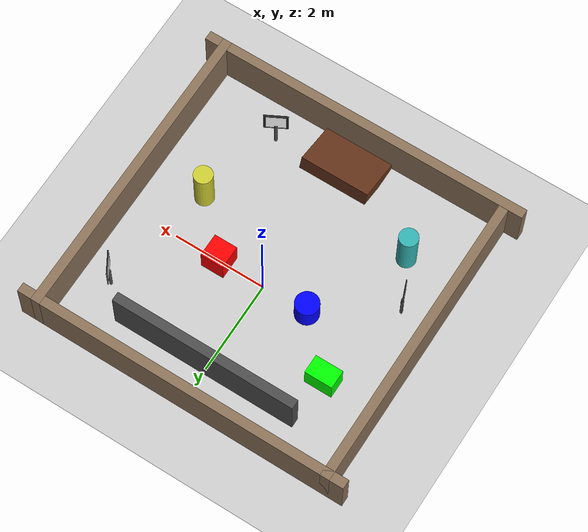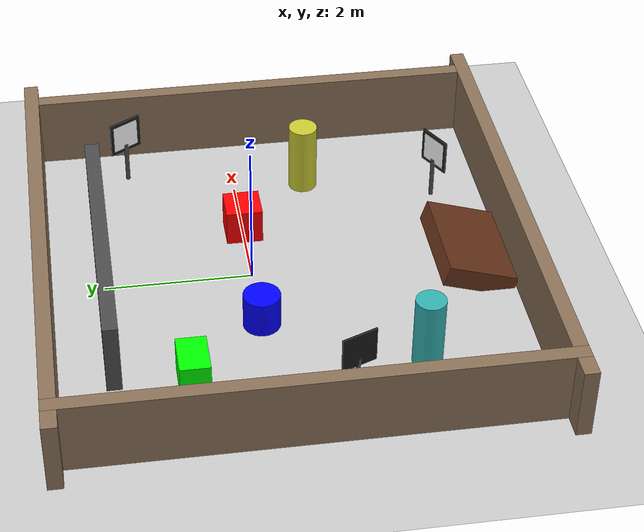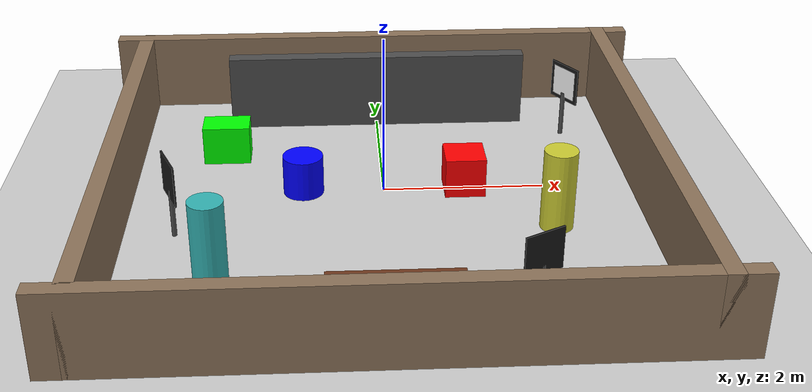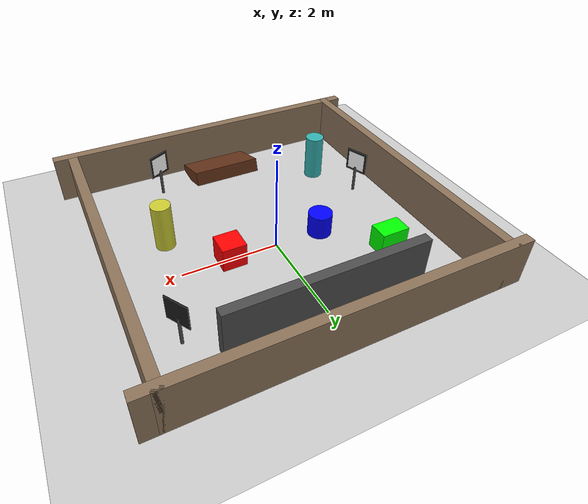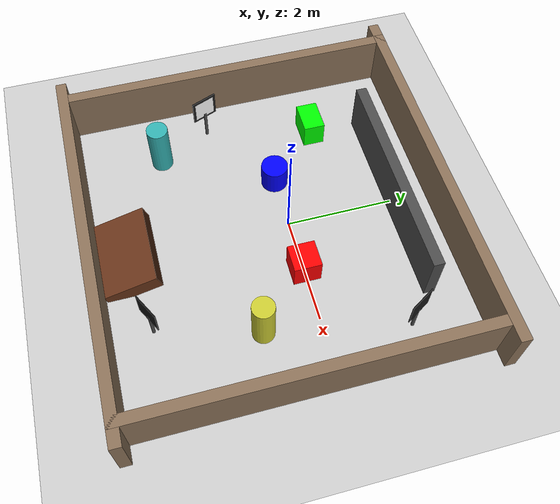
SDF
<?xml version="1.0" ?>
<sdf version="1.6">
  <world name="simple_obstacles_world">

    <!-- ================= LIGHT & GROUND ================= -->
    <plugin
      filename="gz-sim-physics-system"
      name="gz::sim::systems::Physics">
    </plugin>
    <plugin
      filename="gz-sim-sensors-system"
      name="gz::sim::systems::Sensors">
      <render_engine>ogre</render_engine>
    </plugin>
    <plugin
      filename="gz-sim-user-commands-system"
      name="gz::sim::systems::UserCommands">
    </plugin>
    <plugin
      filename="gz-sim-scene-broadcaster-system"
      name="gz::sim::systems::SceneBroadcaster">
    </plugin>
    <plugin
      filename="gz-sim-imu-system"
      name="gz::sim::systems::Imu">
    </plugin>

    <spherical_coordinates>
      <surface_model>EARTH_WGS84</surface_model>
      <latitude_deg>0.0</latitude_deg>
      <longitude_deg>0.0</longitude_deg>
      <elevation>0.0</elevation>
    </spherical_coordinates>

    <light type="directional" name="sun">
      <cast_shadows>true</cast_shadows>
      <pose>0 0 10 0 0 0</pose>
      <diffuse>0.8 0.8 0.8 1</diffuse>
      <specular>0.2 0.2 0.2 1</specular>
      <attenuation>
        <range>1000</range>
        <constant>0.9</constant>
        <linear>0.01</linear>
        <quadratic>0.001</quadratic>
      </attenuation>
      <direction>-0.5 0.1 -0.9</direction>
    </light>

    <model name="ground_plane">
      <static>true</static>
      <link name="link">
        <collision name="collision">
          <geometry>
            <plane>
              <normal>0 0 1</normal>
            </plane>
          </geometry>
        </collision>
        <visual name="visual">
          <geometry>
            <plane>
              <normal>0 0 1</normal>
              <size>100 100</size>
            </plane>
          </geometry>
          <material>
            <ambient>0.8 0.8 0.8 1</ambient>
            <diffuse>0.8 0.8 0.8 1</diffuse>
            <specular>0.8 0.8 0.8 1</specular>
          </material>
        </visual>
      </link>
    </model>

    <!-- ================= BASIC OBSTACLES ================= -->

    <!-- BOX 1 -->
    <model name="box_obstacle_1">
      <static>true</static>
      <pose>1 0 0.25 0 0 0</pose>
      <link name="link">
        <collision name="collision">
          <geometry>
            <box><size>0.5 0.5 0.5</size></box>
          </geometry>
        </collision>
        <visual name="visual">
          <geometry>
            <box><size>0.5 0.5 0.5</size></box>
          </geometry>
          <material><ambient>1 0 0 1</ambient></material>
        </visual>
      </link>
    </model>

    <!-- CYLINDER -->
    <model name="cylinder_obstacle">
      <static>true</static>
      <pose>-1 0 0.25 0 0 0</pose>
      <link name="link">
        <collision name="collision">
          <geometry>
            <cylinder>
              <radius>0.25</radius>
              <length>0.5</length>
            </cylinder>
          </geometry>
        </collision>
        <visual name="visual">
          <geometry>
            <cylinder>
              <radius>0.25</radius>
              <length>0.5</length>
            </cylinder>
          </geometry>
          <material><ambient>0 0 1 1</ambient></material>
        </visual>
      </link>
    </model>

    <!-- WALL -->
    <model name="wall_main">
      <static>true</static>
      <pose>0 2 0.5 0 0 0</pose>
      <link name="link">
        <collision name="collision">
          <geometry>
            <box><size>4 0.2 1</size></box>
          </geometry>
        </collision>
        <visual name="visual">
          <geometry>
            <box><size>4 0.2 1</size></box>
          </geometry>
          <material><ambient>0.3 0.3 0.3 1</ambient></material>
        </visual>
      </link>
    </model>

    <model name="arena_wall_north">
      <static>true</static>
      <pose>0 2.8 0.5 0 0 0</pose>
      <link name="link">
        <collision name="collision">
          <geometry><box><size>7.2 0.2 1</size></box></geometry>
        </collision>
        <visual name="visual">
          <geometry><box><size>7.2 0.2 1</size></box></geometry>
          <material><ambient>0.55 0.45 0.35 1</ambient></material>
        </visual>
      </link>
    </model>

    <model name="arena_wall_south">
      <static>true</static>
      <pose>0 -3.6 0.5 0 0 0</pose>
      <link name="link">
        <collision name="collision">
          <geometry><box><size>7.2 0.2 1</size></box></geometry>
        </collision>
        <visual name="visual">
          <geometry><box><size>7.2 0.2 1</size></box></geometry>
          <material><ambient>0.55 0.45 0.35 1</ambient></material>
        </visual>
      </link>
    </model>

    <model name="arena_wall_east">
      <static>true</static>
      <pose>3.2 -0.4 0.5 0 0 1.5708</pose>
      <link name="link">
        <collision name="collision">
          <geometry><box><size>6.6 0.2 1</size></box></geometry>
        </collision>
        <visual name="visual">
          <geometry><box><size>6.6 0.2 1</size></box></geometry>
          <material><ambient>0.55 0.45 0.35 1</ambient></material>
        </visual>
      </link>
    </model>

    <model name="arena_wall_west">
      <static>true</static>
      <pose>-3.2 -0.4 0.5 0 0 1.5708</pose>
      <link name="link">
        <collision name="collision">
          <geometry><box><size>6.6 0.2 1</size></box></geometry>
        </collision>
        <visual name="visual">
          <geometry><box><size>6.6 0.2 1</size></box></geometry>
          <material><ambient>0.55 0.45 0.35 1</ambient></material>
        </visual>
      </link>
    </model>

    <!-- ================= EXTRA OBSTACLES ================= -->

    <!-- BOX 2 -->
    <model name="box_obstacle_2">
      <static>true</static>
      <pose>-2 1 0.25 0 0 0</pose>
      <link name="link">
        <collision name="collision">
          <geometry>
            <box><size>0.6 0.4 0.5</size></box>
          </geometry>
        </collision>
        <visual name="visual">
          <geometry>
            <box><size>0.6 0.4 0.5</size></box>
          </geometry>
          <material><ambient>0 1 0 1</ambient></material>
        </visual>
      </link>
    </model>

    <!-- PILLAR 1 -->
    <model name="pillar_1">
      <static>true</static>
      <pose>2 -1 0.5 0 0 0</pose>
      <link name="link">
        <collision name="collision">
          <geometry>
            <cylinder>
              <radius>0.2</radius>
              <length>1.0</length>
            </cylinder>
          </geometry>
        </collision>
        <visual name="visual">
          <geometry>
            <cylinder>
              <radius>0.2</radius>
              <length>1.0</length>
            </cylinder>
          </geometry>
          <material><ambient>0.8 0.8 0.2 1</ambient></material>
        </visual>
      </link>
    </model>

    <!-- PILLAR 2 -->
    <model name="pillar_2">
      <static>true</static>
      <pose>-2 -2 0.5 0 0 0</pose>
      <link name="link">
        <collision name="collision">
          <geometry>
            <cylinder>
              <radius>0.2</radius>
              <length>1.0</length>
            </cylinder>
          </geometry>
        </collision>
        <visual name="visual">
          <geometry>
            <cylinder>
              <radius>0.2</radius>
              <length>1.0</length>
            </cylinder>
          </geometry>
          <material><ambient>0.2 0.7 0.7 1</ambient></material>
        </visual>
      </link>
    </model>

    <!-- RAMP -->
    <model name="ramp">
      <static>true</static>
      <pose>0 -3 0.15 0.3 0 0</pose>
      <link name="link">
        <collision name="collision">
          <geometry>
            <box><size>1.5 1.0 0.3</size></box>
          </geometry>
        </collision>
        <visual name="visual">
          <geometry>
            <box><size>1.5 1.0 0.3</size></box>
          </geometry>
          <material><ambient>0.4 0.2 0.1 1</ambient></material>
        </visual>
      </link>
    </model>

    <!-- ================= ARUCO MARKERS ================= -->

    <!-- ArUco Marker 1 (id=1) at (2.5, 1.5), facing robot start (0,0) -->
    <include>
      <uri>model://aruco_marker_1</uri>
      <name>aruco_marker_1</name>
      <pose>2.5 1.5 0 0 0 -2.60</pose>
    </include>

    <!-- ArUco Marker 2 (id=2) at (-2.5, -1.0), facing robot start -->
    <include>
      <uri>model://aruco_marker_2</uri>
      <name>aruco_marker_2</name>
      <pose>-2.5 -1.0 0 0 0 0.38</pose>
    </include>

    <!-- ArUco Marker 3 (id=3) at (1.5, -2.8), facing robot start -->
    <include>
      <uri>model://aruco_marker_3</uri>
      <name>aruco_marker_3</name>
      <pose>1.5 -2.8 0 0 0 2.06</pose>
    </include>

  </world>
</sdf>

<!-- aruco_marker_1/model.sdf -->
<sdf version="1.11">
  <!-- ArUco marker board id=1: stand pole + textured board facing +X -->
  <model name="aruco_marker_1">
    <static>true</static>
    <link name="link">
      <!-- stand pole -->
      <collision name="pole_collision">
        <pose>0 0 0.3 0 0 0</pose>
        <geometry><cylinder><radius>0.03</radius><length>0.6</length></cylinder></geometry>
      </collision>
      <visual name="pole_visual">
        <pose>0 0 0.3 0 0 0</pose>
        <geometry><cylinder><radius>0.03</radius><length>0.6</length></cylinder></geometry>
        <material><diffuse>0.3 0.3 0.3 1</diffuse></material>
      </visual>
      <!-- board backing 0.5 x 0.05 x 0.5 at 0.75m -->
      <collision name="board_collision">
        <pose>0 0 0.75 0 0 0</pose>
        <geometry><box><size>0.05 0.5 0.5</size></box></geometry>
      </collision>
      <visual name="board_back">
        <pose>-0.014 0 0.75 0 0 0</pose>
        <geometry><box><size>0.02 0.5 0.5</size></box></geometry>
        <material><diffuse>0.1 0.1 0.1 1</diffuse></material>
      </visual>
      <!-- ArUco textured face (+X side). Thin plane so camera sees marker_1.png -->
      <visual name="marker_face">
        <pose>0.001 0 0.75 0 0 0</pose>
        <geometry><plane><normal>1 0 0</normal><size>0.4 0.4</size></plane></geometry>
        <material>
          <diffuse>1 1 1 1</diffuse>
          <specular>0 0 0 1</specular>
          <pbr>
            <metal>
              <albedo_map>model://aruco_marker_1/materials/textures/marker_1.png</albedo_map>
              <roughness>0.9</roughness>
              <metalness>0.0</metalness>
            </metal>
          </pbr>
          <script>
            <uri>model://aruco_marker_1/materials/scripts</uri>
            <uri>model://aruco_marker_1/materials/textures</uri>
            <name>ArucoMarker1</name>
          </script>
        </material>
      </visual>
    </link>
  </model>
</sdf>

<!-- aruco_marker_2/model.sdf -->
<sdf version="1.11">
  <model name="aruco_marker_2">
    <static>true</static>
    <link name="link">
      <collision name="pole_collision">
        <pose>0 0 0.3 0 0 0</pose>
        <geometry><cylinder><radius>0.03</radius><length>0.6</length></cylinder></geometry>
      </collision>
      <visual name="pole_visual">
        <pose>0 0 0.3 0 0 0</pose>
        <geometry><cylinder><radius>0.03</radius><length>0.6</length></cylinder></geometry>
        <material><diffuse>0.3 0.3 0.3 1</diffuse></material>
      </visual>
      <collision name="board_collision">
        <pose>0 0 0.75 0 0 0</pose>
        <geometry><box><size>0.05 0.5 0.5</size></box></geometry>
      </collision>
      <visual name="board_back">
        <pose>-0.014 0 0.75 0 0 0</pose>
        <geometry><box><size>0.02 0.5 0.5</size></box></geometry>
        <material><diffuse>0.1 0.1 0.1 1</diffuse></material>
      </visual>
      <visual name="marker_face">
        <pose>0.001 0 0.75 0 0 0</pose>
        <geometry><plane><normal>1 0 0</normal><size>0.4 0.4</size></plane></geometry>
        <material>
          <diffuse>1 1 1 1</diffuse>
          <specular>0 0 0 1</specular>
          <pbr>
            <metal>
              <albedo_map>model://aruco_marker_2/materials/textures/marker_2.png</albedo_map>
              <roughness>0.9</roughness>
              <metalness>0.0</metalness>
            </metal>
          </pbr>
          <script>
            <uri>model://aruco_marker_2/materials/scripts</uri>
            <uri>model://aruco_marker_2/materials/textures</uri>
            <name>ArucoMarker2</name>
          </script>
        </material>
      </visual>
    </link>
  </model>
</sdf>

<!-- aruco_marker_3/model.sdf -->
<sdf version="1.11">
  <model name="aruco_marker_3">
    <static>true</static>
    <link name="link">
      <collision name="pole_collision">
        <pose>0 0 0.3 0 0 0</pose>
        <geometry><cylinder><radius>0.03</radius><length>0.6</length></cylinder></geometry>
      </collision>
      <visual name="pole_visual">
        <pose>0 0 0.3 0 0 0</pose>
        <geometry><cylinder><radius>0.03</radius><length>0.6</length></cylinder></geometry>
        <material><diffuse>0.3 0.3 0.3 1</diffuse></material>
      </visual>
      <collision name="board_collision">
        <pose>0 0 0.75 0 0 0</pose>
        <geometry><box><size>0.05 0.5 0.5</size></box></geometry>
      </collision>
      <visual name="board_back">
        <pose>-0.014 0 0.75 0 0 0</pose>
        <geometry><box><size>0.02 0.5 0.5</size></box></geometry>
        <material><diffuse>0.1 0.1 0.1 1</diffuse></material>
      </visual>
      <visual name="marker_face">
        <pose>0.001 0 0.75 0 0 0</pose>
        <geometry><plane><normal>1 0 0</normal><size>0.4 0.4</size></plane></geometry>
        <material>
          <diffuse>1 1 1 1</diffuse>
          <specular>0 0 0 1</specular>
          <pbr>
            <metal>
              <albedo_map>model://aruco_marker_3/materials/textures/marker_3.png</albedo_map>
              <roughness>0.9</roughness>
              <metalness>0.0</metalness>
            </metal>
          </pbr>
          <script>
            <uri>model://aruco_marker_3/materials/scripts</uri>
            <uri>model://aruco_marker_3/materials/textures</uri>
            <name>ArucoMarker3</name>
          </script>
        </material>
      </visual>
    </link>
  </model>
</sdf>
